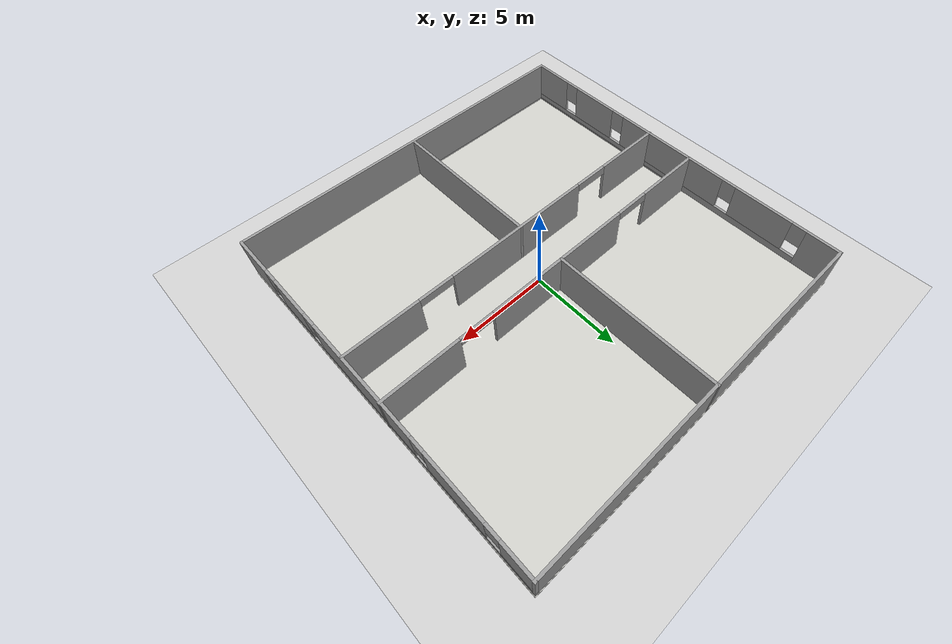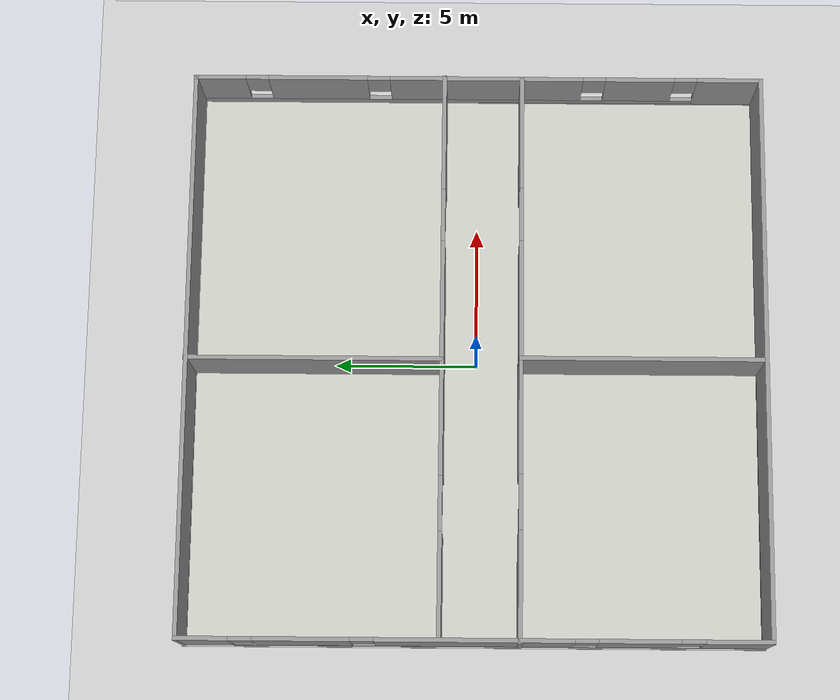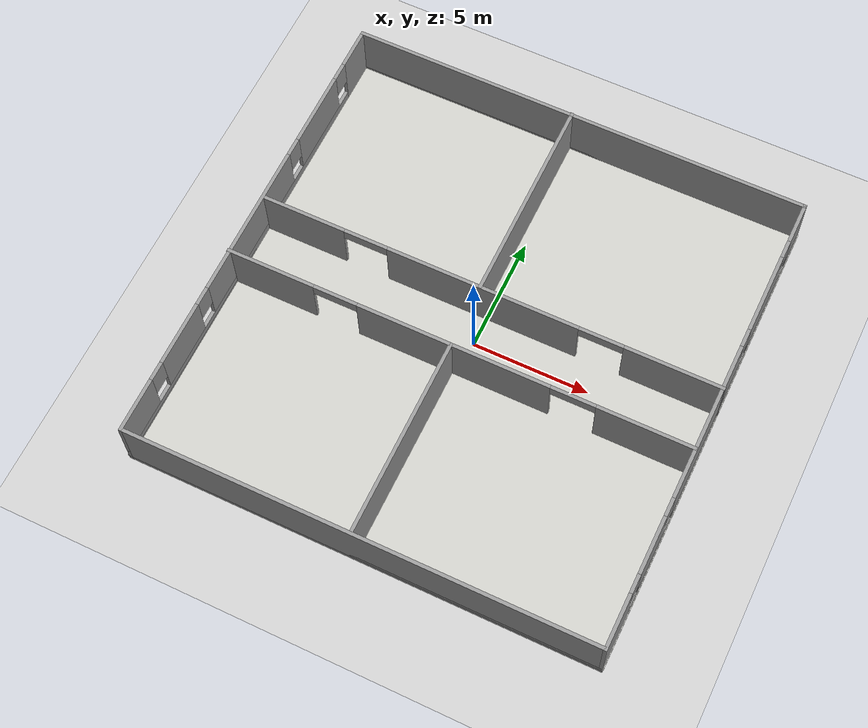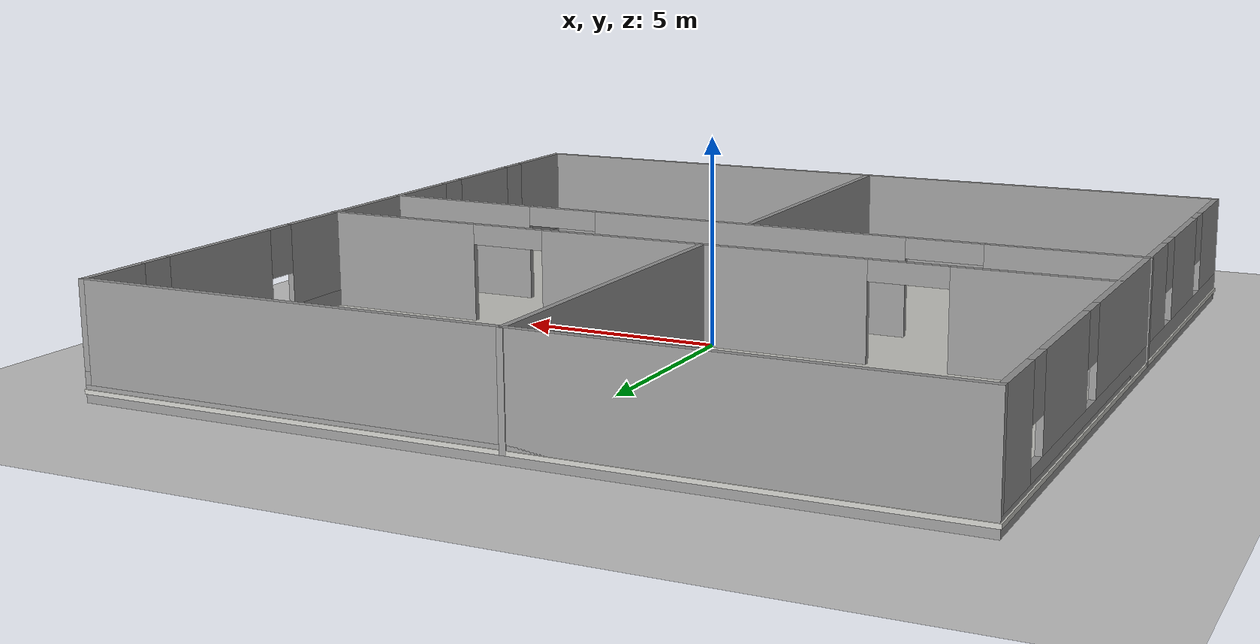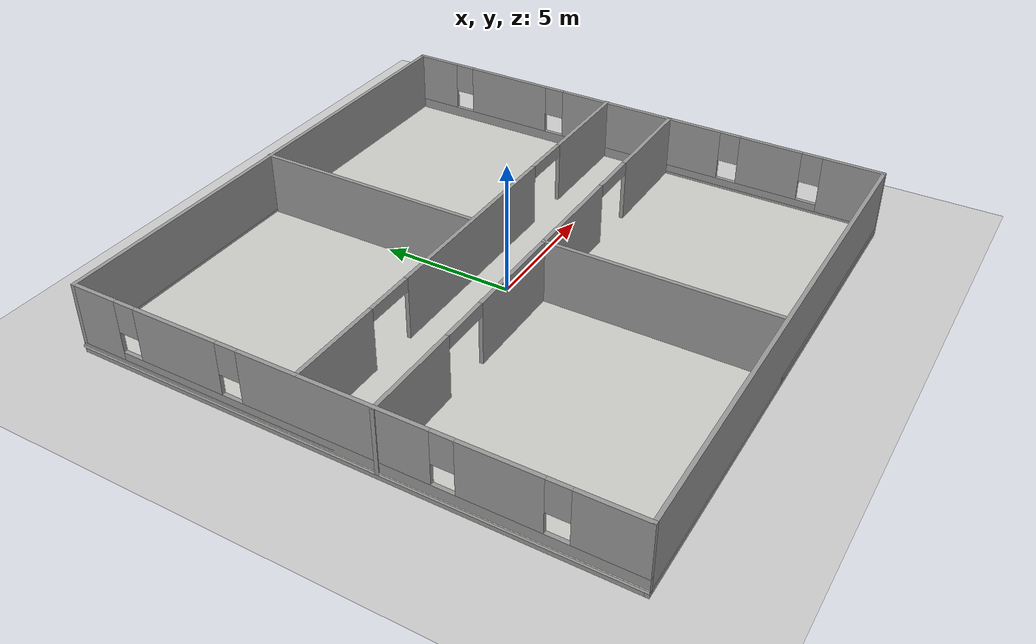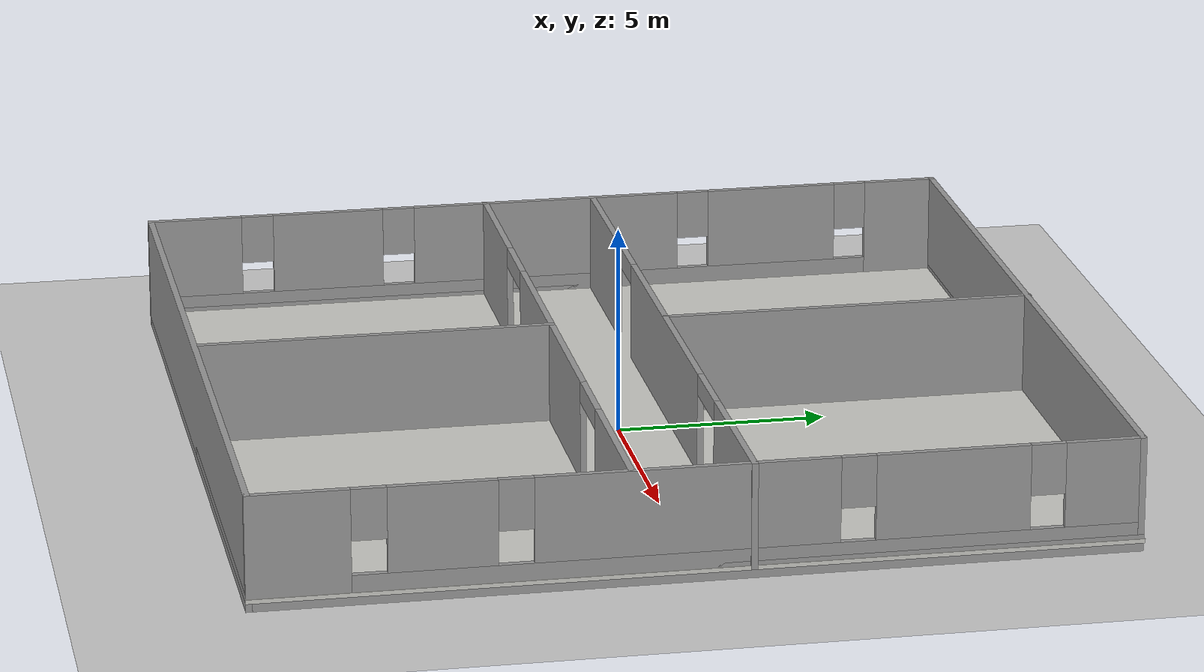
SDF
<sdf version="1.6">
 <world name="default">
  <light name="sun" type="directional">
   <pose>0 0 10 0 -0 0</pose>
   <diffuse>0.8 0.8 0.8 1</diffuse>
   <specular>0.1 0.1 0.1 1</specular>
   <attenuation>
    <range>1000</range>
    <constant>0.9</constant>
    <linear>0.01</linear>
    <quadratic>0.001</quadratic>
   </attenuation>
   <direction>-0.5 0.5 -1</direction>
  </light>
  <model name="ground_plane">
   <static>1</static>
   <link name="link">
    <collision name="collision">
     <geometry><plane><normal>0 0 1</normal><size>100 100</size></plane></geometry>
     <surface><friction><ode><mu>100</mu><mu2>50</mu2></ode></friction></surface>
    </collision>
    <visual name="visual">
     <cast_shadows>0</cast_shadows>
     <geometry><plane><normal>0 0 1</normal><size>100 100</size></plane></geometry>
     <material>
      <script><uri>file://media/materials/scripts/gazebo.material</uri><name>Gazebo/Grey</name></script>
     </material>
    </visual>
   </link>
  </model>
  <gravity>0 0 -9.8</gravity>
  <magnetic_field>6e-06 2.3e-05 -4.2e-05</magnetic_field>
  <atmosphere type="adiabatic"/>
  <physics name="default_physics" default="0" type="ode">
   <max_step_size>0.001</max_step_size>
   <real_time_factor>1</real_time_factor>
   <real_time_update_rate>1000</real_time_update_rate>
  </physics>
  <scene><ambient>0.4 0.4 0.4 1</ambient><background>0.7 0.7 0.7 1</background><shadows>1</shadows></scene>
  <spherical_coordinates>
   <surface_model>EARTH_WGS84</surface_model>
   <latitude_deg>0</latitude_deg>
   <longitude_deg>0</longitude_deg>
   <elevation>0</elevation>
   <heading_deg>0</heading_deg>
  </spherical_coordinates>
  <model name="hospital3">
   <link name="Floor_0">
    <collision name="Floor_0_Collision">
     <geometry><box><size>20.0603 20.2752 0.1</size></box></geometry>
     <pose>0 0 0.05 0 -0 0</pose>
    </collision>
    <visual name="Floor_0_Visual">
     <pose>0 0 0.05 0 -0 0</pose>
     <geometry><box><size>20.0603 20.2752 0.1</size></box></geometry>
     <material>
      <script><uri>file://media/materials/scripts/gazebo.material</uri><name>Gazebo/CeilingTiled</name></script>
      <ambient>1 1 1 1</ambient>
     </material>
    </visual>
    <pose>0 0 0.2 0 -0 0</pose>
   </link>
   <link name="Wall_11">
    <collision name="Wall_11_Collision">
     <geometry><box><size>20 0.15 0.2</size></box></geometry>
     <pose>0 0 0.1 0 -0 0</pose>
    </collision>
    <visual name="Wall_11_Visual">
     <pose>0 0 0.1 0 -0 0</pose>
     <geometry><box><size>20 0.15 0.2</size></box></geometry>
     <material>
      <script><uri>file://media/materials/scripts/gazebo.material</uri><name>Gazebo/Grey</name></script>
      <ambient>1 1 1 1</ambient>
     </material>
    </visual>
    <pose>0.004654 10.0374 0.2 0 -0 0</pose>
   </link>
   <link name="Wall_12">
    <collision name="Wall_12_Collision">
     <geometry><box><size>20.25 0.15 0.2</size></box></geometry>
     <pose>0 0 0.1 0 -0 0</pose>
    </collision>
    <visual name="Wall_12_Visual">
     <pose>0 0 0.1 0 -0 0</pose>
     <geometry><box><size>20.25 0.15 0.2</size></box></geometry>
     <material>
      <script><uri>file://media/materials/scripts/gazebo.material</uri><name>Gazebo/Grey</name></script>
      <ambient>1 1 1 1</ambient>
     </material>
    </visual>
    <pose>9.92965 -0.012624 0.2 0 0 -1.5708</pose>
   </link>
   <link name="Wall_13">
    <collision name="Wall_13_Collision">
     <geometry><box><size>20 0.15 0.2</size></box></geometry>
     <pose>0 0 0.1 0 -0 0</pose>
    </collision>
    <visual name="Wall_13_Visual">
     <pose>0 0 0.1 0 -0 0</pose>
     <geometry><box><size>20 0.15 0.2</size></box></geometry>
     <material>
      <script><uri>file://media/materials/scripts/gazebo.material</uri><name>Gazebo/Grey</name></script>
      <ambient>1 1 1 1</ambient>
     </material>
    </visual>
    <pose>0.004654 -10.0626 0.2 0 -0 3.14159</pose>
   </link>
   <link name="Wall_14">
    <collision name="Wall_14_Collision">
     <geometry><box><size>20.25 0.15 0.2</size></box></geometry>
     <pose>0 0 0.1 0 -0 0</pose>
    </collision>
    <visual name="Wall_14_Visual">
     <pose>0 0 0.1 0 -0 0</pose>
     <geometry><box><size>20.25 0.15 0.2</size></box></geometry>
     <material>
      <script><uri>file://media/materials/scripts/gazebo.material</uri><name>Gazebo/Grey</name></script>
      <ambient>1 1 1 1</ambient>
     </material>
    </visual>
    <pose>-9.92035 -0.012624 0.2 0 -0 1.5708</pose>
   </link>
   <link name="Wall_17">
    <pose>0.03017 1.18285 0.2 0 -0 0</pose>
    <visual name="Wall_17_Visual_0">
     <pose>-8.13457 0 1.25 0 -0 0</pose>
     <geometry><box><size>3.73087 0.15 2.5</size></box></geometry>
     <material>
      <script><uri>file://media/materials/scripts/gazebo.material</uri><name>Gazebo/Grey</name></script>
      <ambient>1 1 1 1</ambient>
     </material>
    </visual>
    <collision name="Wall_17_Collision_0">
     <geometry><box><size>3.73087 0.15 2.5</size></box></geometry>
     <pose>-8.13457 0 1.25 0 -0 0</pose>
    </collision>
    <visual name="Wall_17_Visual_1">
     <pose>-0.231335 0 1.25 0 -0 0</pose>
     <geometry><box><size>8.27559 0.15 2.5</size></box></geometry>
     <material>
      <script><uri>file://media/materials/scripts/gazebo.material</uri><name>Gazebo/Grey</name></script>
      <ambient>1 1 1 1</ambient>
     </material>
    </visual>
    <collision name="Wall_17_Collision_1">
     <geometry><box><size>8.27559 0.15 2.5</size></box></geometry>
     <pose>-0.231335 0 1.25 0 -0 0</pose>
    </collision>
    <visual name="Wall_17_Visual_2">
     <pose>7.90323 0 1.25 0 -0 0</pose>
     <geometry><box><size>4.19354 0.15 2.5</size></box></geometry>
     <material>
      <script><uri>file://media/materials/scripts/gazebo.material</uri><name>Gazebo/Grey</name></script>
      <ambient>1 1 1 1</ambient>
     </material>
    </visual>
    <collision name="Wall_17_Collision_2">
     <geometry><box><size>4.19354 0.15 2.5</size></box></geometry>
     <pose>7.90323 0 1.25 0 -0 0</pose>
    </collision>
    <visual name="Wall_17_Visual_3">
     <pose>-5.31913 0 2.25 0 -0 0</pose>
     <geometry><box><size>1.9 0.15 0.5</size></box></geometry>
     <material>
      <script><uri>file://media/materials/scripts/gazebo.material</uri><name>Gazebo/Grey</name></script>
      <ambient>1 1 1 1</ambient>
     </material>
    </visual>
    <collision name="Wall_17_Collision_3">
     <geometry><box><size>1.9 0.15 0.5</size></box></geometry>
     <pose>-5.31913 0 2.25 0 -0 0</pose>
    </collision>
    <visual name="Wall_17_Visual_4">
     <pose>4.85646 0 2.25 0 -0 0</pose>
     <geometry><box><size>1.9 0.15 0.5</size></box></geometry>
     <material>
      <script><uri>file://media/materials/scripts/gazebo.material</uri><name>Gazebo/Grey</name></script>
      <ambient>1 1 1 1</ambient>
     </material>
    </visual>
    <collision name="Wall_17_Collision_4">
     <geometry><box><size>1.9 0.15 0.5</size></box></geometry>
     <pose>4.85646 0 2.25 0 -0 0</pose>
    </collision>
   </link>
   <link name="Wall_19">
    <pose>-0.030171 -1.56835 0.2 0 -0 0</pose>
    <visual name="Wall_19_Visual_0">
     <pose>-8.07516 0 1.25 0 -0 0</pose>
     <geometry><box><size>3.84968 0.15 2.5</size></box></geometry>
     <material>
      <script><uri>file://media/materials/scripts/gazebo.material</uri><name>Gazebo/Grey</name></script>
      <ambient>1 1 1 1</ambient>
     </material>
    </visual>
    <collision name="Wall_19_Collision_0">
     <geometry><box><size>3.84968 0.15 2.5</size></box></geometry>
     <pose>-8.07516 0 1.25 0 -0 0</pose>
    </collision>
    <visual name="Wall_19_Visual_1">
     <pose>-0.121647 0 1.25 0 -0 0</pose>
     <geometry><box><size>8.25735 0.15 2.5</size></box></geometry>
     <material>
      <script><uri>file://media/materials/scripts/gazebo.material</uri><name>Gazebo/Grey</name></script>
      <ambient>1 1 1 1</ambient>
     </material>
    </visual>
    <collision name="Wall_19_Collision_1">
     <geometry><box><size>8.25735 0.15 2.5</size></box></geometry>
     <pose>-0.121647 0 1.25 0 -0 0</pose>
    </collision>
    <visual name="Wall_19_Visual_2">
     <pose>7.95352 0 1.25 0 -0 0</pose>
     <geometry><box><size>4.09297 0.15 2.5</size></box></geometry>
     <material>
      <script><uri>file://media/materials/scripts/gazebo.material</uri><name>Gazebo/Grey</name></script>
      <ambient>1 1 1 1</ambient>
     </material>
    </visual>
    <collision name="Wall_19_Collision_2">
     <geometry><box><size>4.09297 0.15 2.5</size></box></geometry>
     <pose>7.95352 0 1.25 0 -0 0</pose>
    </collision>
    <visual name="Wall_19_Visual_3">
     <pose>-5.20032 0 2.25 0 -0 0</pose>
     <geometry><box><size>1.9 0.15 0.5</size></box></geometry>
     <material>
      <script><uri>file://media/materials/scripts/gazebo.material</uri><name>Gazebo/Grey</name></script>
      <ambient>1 1 1 1</ambient>
     </material>
    </visual>
    <collision name="Wall_19_Collision_3">
     <geometry><box><size>1.9 0.15 0.5</size></box></geometry>
     <pose>-5.20032 0 2.25 0 -0 0</pose>
    </collision>
    <visual name="Wall_19_Visual_4">
     <pose>4.95703 0 2.25 0 -0 0</pose>
     <geometry><box><size>1.9 0.15 0.5</size></box></geometry>
     <material>
      <script><uri>file://media/materials/scripts/gazebo.material</uri><name>Gazebo/Grey</name></script>
      <ambient>1 1 1 1</ambient>
     </material>
    </visual>
    <collision name="Wall_19_Collision_4">
     <geometry><box><size>1.9 0.15 0.5</size></box></geometry>
     <pose>4.95703 0 2.25 0 -0 0</pose>
    </collision>
   </link>
   <link name="Wall_21">
    <pose>-9.92035 -0.012624 0.2 0 0 -1.5708</pose>
    <visual name="Wall_21_Visual_0">
     <pose>-9.20114 0 1.25 0 -0 0</pose>
     <geometry><box><size>1.84772 0.15 2.5</size></box></geometry>
     <material>
      <script><uri>file://media/materials/scripts/gazebo.material</uri><name>Gazebo/Grey</name></script>
      <ambient>1 1 1 1</ambient>
     </material>
    </visual>
    <collision name="Wall_21_Collision_0">
     <geometry><box><size>1.84772 0.15 2.5</size></box></geometry>
     <pose>-9.20114 0 1.25 0 -0 0</pose>
    </collision>
    <visual name="Wall_21_Visual_1">
     <pose>0.923858 0 0.25 0 -0 0</pose>
     <geometry><box><size>18.4023 0.15 0.5</size></box></geometry>
     <material>
      <script><uri>file://media/materials/scripts/gazebo.material</uri><name>Gazebo/Grey</name></script>
      <ambient>1 1 1 1</ambient>
     </material>
    </visual>
    <collision name="Wall_21_Collision_1">
     <geometry><box><size>18.4023 0.15 0.5</size></box></geometry>
     <pose>0.923858 0 0.25 0 -0 0</pose>
    </collision>
    <visual name="Wall_21_Visual_2">
     <pose>-5.83023 0 1.5 0 -0 0</pose>
     <geometry><box><size>3.2941 0.15 2</size></box></geometry>
     <material>
      <script><uri>file://media/materials/scripts/gazebo.material</uri><name>Gazebo/Grey</name></script>
      <ambient>1 1 1 1</ambient>
     </material>
    </visual>
    <collision name="Wall_21_Collision_2">
     <geometry><box><size>3.2941 0.15 2</size></box></geometry>
     <pose>-5.83023 0 1.5 0 -0 0</pose>
    </collision>
    <visual name="Wall_21_Visual_3">
     <pose>0.008519 0 1.5 0 -0 0</pose>
     <geometry><box><size>6.7834 0.15 2</size></box></geometry>
     <material>
      <script><uri>file://media/materials/scripts/gazebo.material</uri><name>Gazebo/Grey</name></script>
      <ambient>1 1 1 1</ambient>
     </material>
    </visual>
    <collision name="Wall_21_Collision_3">
     <geometry><box><size>6.7834 0.15 2</size></box></geometry>
     <pose>0.008519 0 1.5 0 -0 0</pose>
    </collision>
    <visual name="Wall_21_Visual_4">
     <pose>5.59139 0 1.5 0 -0 0</pose>
     <geometry><box><size>2.78234 0.15 2</size></box></geometry>
     <material>
      <script><uri>file://media/materials/scripts/gazebo.material</uri><name>Gazebo/Grey</name></script>
      <ambient>1 1 1 1</ambient>
     </material>
    </visual>
    <collision name="Wall_21_Collision_4">
     <geometry><box><size>2.78234 0.15 2</size></box></geometry>
     <pose>5.59139 0 1.5 0 -0 0</pose>
    </collision>
    <visual name="Wall_21_Visual_5">
     <pose>8.95378 0 1.5 0 -0 0</pose>
     <geometry><box><size>2.34244 0.15 2</size></box></geometry>
     <material>
      <script><uri>file://media/materials/scripts/gazebo.material</uri><name>Gazebo/Grey</name></script>
      <ambient>1 1 1 1</ambient>
     </material>
    </visual>
    <collision name="Wall_21_Collision_5">
     <geometry><box><size>2.34244 0.15 2</size></box></geometry>
     <pose>8.95378 0 1.5 0 -0 0</pose>
    </collision>
    <visual name="Wall_21_Visual_6">
     <pose>-7.87728 0 1.9 0 -0 0</pose>
     <geometry><box><size>0.8 0.15 1.2</size></box></geometry>
     <material>
      <script><uri>file://media/materials/scripts/gazebo.material</uri><name>Gazebo/Grey</name></script>
      <ambient>1 1 1 1</ambient>
     </material>
    </visual>
    <collision name="Wall_21_Collision_6">
     <geometry><box><size>0.8 0.15 1.2</size></box></geometry>
     <pose>-7.87728 0 1.9 0 -0 0</pose>
    </collision>
    <visual name="Wall_21_Visual_7">
     <pose>-3.78318 0 1.9 0 -0 0</pose>
     <geometry><box><size>0.8 0.15 1.2</size></box></geometry>
     <material>
      <script><uri>file://media/materials/scripts/gazebo.material</uri><name>Gazebo/Grey</name></script>
      <ambient>1 1 1 1</ambient>
     </material>
    </visual>
    <collision name="Wall_21_Collision_7">
     <geometry><box><size>0.8 0.15 1.2</size></box></geometry>
     <pose>-3.78318 0 1.9 0 -0 0</pose>
    </collision>
    <visual name="Wall_21_Visual_8">
     <pose>3.80022 0 1.9 0 -0 0</pose>
     <geometry><box><size>0.8 0.15 1.2</size></box></geometry>
     <material>
      <script><uri>file://media/materials/scripts/gazebo.material</uri><name>Gazebo/Grey</name></script>
      <ambient>1 1 1 1</ambient>
     </material>
    </visual>
    <collision name="Wall_21_Collision_8">
     <geometry><box><size>0.8 0.15 1.2</size></box></geometry>
     <pose>3.80022 0 1.9 0 -0 0</pose>
    </collision>
    <visual name="Wall_21_Visual_9">
     <pose>7.38256 0 1.9 0 -0 0</pose>
     <geometry><box><size>0.8 0.15 1.2</size></box></geometry>
     <material>
      <script><uri>file://media/materials/scripts/gazebo.material</uri><name>Gazebo/Grey</name></script>
      <ambient>1 1 1 1</ambient>
     </material>
    </visual>
    <collision name="Wall_21_Collision_9">
     <geometry><box><size>0.8 0.15 1.2</size></box></geometry>
     <pose>7.38256 0 1.9 0 -0 0</pose>
    </collision>
   </link>
   <link name="Wall_22">
    <collision name="Wall_22_Collision">
     <geometry><box><size>20 0.15 2.5</size></box></geometry>
     <pose>0 0 1.25 0 -0 0</pose>
    </collision>
    <visual name="Wall_22_Visual">
     <pose>0 0 1.25 0 -0 0</pose>
     <geometry><box><size>20 0.15 2.5</size></box></geometry>
     <material>
      <script><uri>file://media/materials/scripts/gazebo.material</uri><name>Gazebo/Grey</name></script>
      <ambient>1 1 1 1</ambient>
     </material>
    </visual>
    <pose>0.004654 -10.0626 0.2 0 -0 0</pose>
   </link>
   <link name="Wall_23">
    <pose>9.92965 -0.012624 0.2 0 -0 1.5708</pose>
    <visual name="Wall_23_Visual_0">
     <pose>-8.95378 0 1.25 0 -0 0</pose>
     <geometry><box><size>2.34244 0.15 2.5</size></box></geometry>
     <material>
      <script><uri>file://media/materials/scripts/gazebo.material</uri><name>Gazebo/Grey</name></script>
      <ambient>1 1 1 1</ambient>
     </material>
    </visual>
    <collision name="Wall_23_Collision_0">
     <geometry><box><size>2.34244 0.15 2.5</size></box></geometry>
     <pose>-8.95378 0 1.25 0 -0 0</pose>
    </collision>
    <visual name="Wall_23_Visual_1">
     <pose>1.17122 0 0.25 0 -0 0</pose>
     <geometry><box><size>17.9076 0.15 0.5</size></box></geometry>
     <material>
      <script><uri>file://media/materials/scripts/gazebo.material</uri><name>Gazebo/Grey</name></script>
      <ambient>1 1 1 1</ambient>
     </material>
    </visual>
    <collision name="Wall_23_Collision_1">
     <geometry><box><size>17.9076 0.15 0.5</size></box></geometry>
     <pose>1.17122 0 0.25 0 -0 0</pose>
    </collision>
    <visual name="Wall_23_Visual_2">
     <pose>-5.75422 0 1.5 0 -0 0</pose>
     <geometry><box><size>2.45667 0.15 2</size></box></geometry>
     <material>
      <script><uri>file://media/materials/scripts/gazebo.material</uri><name>Gazebo/Grey</name></script>
      <ambient>1 1 1 1</ambient>
     </material>
    </visual>
    <collision name="Wall_23_Collision_2">
     <geometry><box><size>2.45667 0.15 2</size></box></geometry>
     <pose>-5.75422 0 1.5 0 -0 0</pose>
    </collision>
    <visual name="Wall_23_Visual_3">
     <pose>-0.287663 0 1.5 0 -0 0</pose>
     <geometry><box><size>6.87645 0.15 2</size></box></geometry>
     <material>
      <script><uri>file://media/materials/scripts/gazebo.material</uri><name>Gazebo/Grey</name></script>
      <ambient>1 1 1 1</ambient>
     </material>
    </visual>
    <collision name="Wall_23_Collision_3">
     <geometry><box><size>6.87645 0.15 2</size></box></geometry>
     <pose>-0.287663 0 1.5 0 -0 0</pose>
    </collision>
    <visual name="Wall_23_Visual_4">
     <pose>5.71392 0 1.5 0 -0 0</pose>
     <geometry><box><size>3.52672 0.15 2</size></box></geometry>
     <material>
      <script><uri>file://media/materials/scripts/gazebo.material</uri><name>Gazebo/Grey</name></script>
      <ambient>1 1 1 1</ambient>
     </material>
    </visual>
    <collision name="Wall_23_Collision_4">
     <geometry><box><size>3.52672 0.15 2</size></box></geometry>
     <pose>5.71392 0 1.5 0 -0 0</pose>
    </collision>
    <visual name="Wall_23_Visual_5">
     <pose>9.20114 0 1.5 0 -0 0</pose>
     <geometry><box><size>1.84772 0.15 2</size></box></geometry>
     <material>
      <script><uri>file://media/materials/scripts/gazebo.material</uri><name>Gazebo/Grey</name></script>
      <ambient>1 1 1 1</ambient>
     </material>
    </visual>
    <collision name="Wall_23_Collision_5">
     <geometry><box><size>1.84772 0.15 2</size></box></geometry>
     <pose>9.20114 0 1.5 0 -0 0</pose>
    </collision>
    <visual name="Wall_23_Visual_6">
     <pose>-7.38256 0 1.9 0 -0 0</pose>
     <geometry><box><size>0.8 0.15 1.2</size></box></geometry>
     <material>
      <script><uri>file://media/materials/scripts/gazebo.material</uri><name>Gazebo/Grey</name></script>
      <ambient>1 1 1 1</ambient>
     </material>
    </visual>
    <collision name="Wall_23_Collision_6">
     <geometry><box><size>0.8 0.15 1.2</size></box></geometry>
     <pose>-7.38256 0 1.9 0 -0 0</pose>
    </collision>
    <visual name="Wall_23_Visual_7">
     <pose>-4.12589 0 1.9 0 -0 0</pose>
     <geometry><box><size>0.8 0.15 1.2</size></box></geometry>
     <material>
      <script><uri>file://media/materials/scripts/gazebo.material</uri><name>Gazebo/Grey</name></script>
      <ambient>1 1 1 1</ambient>
     </material>
    </visual>
    <collision name="Wall_23_Collision_7">
     <geometry><box><size>0.8 0.15 1.2</size></box></geometry>
     <pose>-4.12589 0 1.9 0 -0 0</pose>
    </collision>
    <visual name="Wall_23_Visual_8">
     <pose>3.55056 0 1.9 0 -0 0</pose>
     <geometry><box><size>0.8 0.15 1.2</size></box></geometry>
     <material>
      <script><uri>file://media/materials/scripts/gazebo.material</uri><name>Gazebo/Grey</name></script>
      <ambient>1 1 1 1</ambient>
     </material>
    </visual>
    <collision name="Wall_23_Collision_8">
     <geometry><box><size>0.8 0.15 1.2</size></box></geometry>
     <pose>3.55056 0 1.9 0 -0 0</pose>
    </collision>
    <visual name="Wall_23_Visual_9">
     <pose>7.87728 0 1.9 0 -0 0</pose>
     <geometry><box><size>0.8 0.15 1.2</size></box></geometry>
     <material>
      <script><uri>file://media/materials/scripts/gazebo.material</uri><name>Gazebo/Grey</name></script>
      <ambient>1 1 1 1</ambient>
     </material>
    </visual>
    <collision name="Wall_23_Collision_9">
     <geometry><box><size>0.8 0.15 1.2</size></box></geometry>
     <pose>7.87728 0 1.9 0 -0 0</pose>
    </collision>
   </link>
   <link name="Wall_24">
    <collision name="Wall_24_Collision">
     <geometry><box><size>20 0.15 2.5</size></box></geometry>
     <pose>0 0 1.25 0 -0 0</pose>
    </collision>
    <visual name="Wall_24_Visual">
     <pose>0 0 1.25 0 -0 0</pose>
     <geometry><box><size>20 0.15 2.5</size></box></geometry>
     <material>
      <script><uri>file://media/materials/scripts/gazebo.material</uri><name>Gazebo/Grey</name></script>
      <ambient>1 1 1 1</ambient>
     </material>
    </visual>
    <pose>0.004654 10.0374 0.2 0 -0 3.14159</pose>
   </link>
   <link name="Wall_26">
    <collision name="Wall_26_Collision">
     <geometry><box><size>9 0.15 2.5</size></box></geometry>
     <pose>0 0 1.25 0 -0 0</pose>
    </collision>
    <visual name="Wall_26_Visual">
     <pose>0 0 1.25 0 -0 0</pose>
     <geometry><box><size>9 0.15 2.5</size></box></geometry>
     <material>
      <script><uri>file://media/materials/scripts/gazebo.material</uri><name>Gazebo/Grey</name></script>
      <ambient>1 1 1 1</ambient>
     </material>
    </visual>
    <pose>-0.278197 5.63762 0.2 0 0 -1.5708</pose>
   </link>
   <link name="Wall_28">
    <collision name="Wall_28_Collision">
     <geometry><box><size>8.5 0.15 2.5</size></box></geometry>
     <pose>0 0 1.25 0 -0 0</pose>
    </collision>
    <visual name="Wall_28_Visual">
     <pose>0 0 1.25 0 -0 0</pose>
     <geometry><box><size>8.5 0.15 2.5</size></box></geometry>
     <material>
      <script><uri>file://media/materials/scripts/gazebo.material</uri><name>Gazebo/Grey</name></script>
      <ambient>1 1 1 1</ambient>
     </material>
    </visual>
    <pose>-0.231673 -5.74335 0.2 0 0 -1.5708</pose>
   </link>
   <link name="Wall_6">
    <collision name="Wall_6_Collision">
     <geometry><box><size>20 0.15 0.2</size></box></geometry>
     <pose>0 0 0.1 0 -0 0</pose>
    </collision>
    <visual name="Wall_6_Visual">
     <pose>0 0 0.1 0 -0 0</pose>
     <geometry><box><size>20 0.15 0.2</size></box></geometry>
     <material>
      <script><uri>file://media/materials/scripts/gazebo.material</uri><name>Gazebo/Grey</name></script>
      <ambient>1 1 1 1</ambient>
     </material>
    </visual>
    <pose>0.004654 10.0374 0 0 -0 0</pose>
   </link>
   <link name="Wall_7">
    <collision name="Wall_7_Collision">
     <geometry><box><size>20.25 0.15 0.2</size></box></geometry>
     <pose>0 0 0.1 0 -0 0</pose>
    </collision>
    <visual name="Wall_7_Visual">
     <pose>0 0 0.1 0 -0 0</pose>
     <geometry><box><size>20.25 0.15 0.2</size></box></geometry>
     <material>
      <script><uri>file://media/materials/scripts/gazebo.material</uri><name>Gazebo/Grey</name></script>
      <ambient>1 1 1 1</ambient>
     </material>
    </visual>
    <pose>9.92965 -0.012624 0 0 0 -1.5708</pose>
   </link>
   <link name="Wall_8">
    <collision name="Wall_8_Collision">
     <geometry><box><size>20 0.15 0.2</size></box></geometry>
     <pose>0 0 0.1 0 -0 0</pose>
    </collision>
    <visual name="Wall_8_Visual">
     <pose>0 0 0.1 0 -0 0</pose>
     <geometry><box><size>20 0.15 0.2</size></box></geometry>
     <material>
      <script><uri>file://media/materials/scripts/gazebo.material</uri><name>Gazebo/Grey</name></script>
      <ambient>1 1 1 1</ambient>
     </material>
    </visual>
    <pose>0.004654 -10.0626 0 0 -0 3.14159</pose>
   </link>
   <link name="Wall_9">
    <collision name="Wall_9_Collision">
     <geometry><box><size>20.25 0.15 0.2</size></box></geometry>
     <pose>0 0 0.1 0 -0 0</pose>
    </collision>
    <visual name="Wall_9_Visual">
     <pose>0 0 0.1 0 -0 0</pose>
     <geometry><box><size>20.25 0.15 0.2</size></box></geometry>
     <material>
      <script><uri>file://media/materials/scripts/gazebo.material</uri><name>Gazebo/Grey</name></script>
      <ambient>1 1 1 1</ambient>
     </material>
    </visual>
    <pose>-9.92035 -0.012624 0 0 -0 1.5708</pose>
   </link>
   <static>1</static>
  </model>
 </world>
</sdf>
